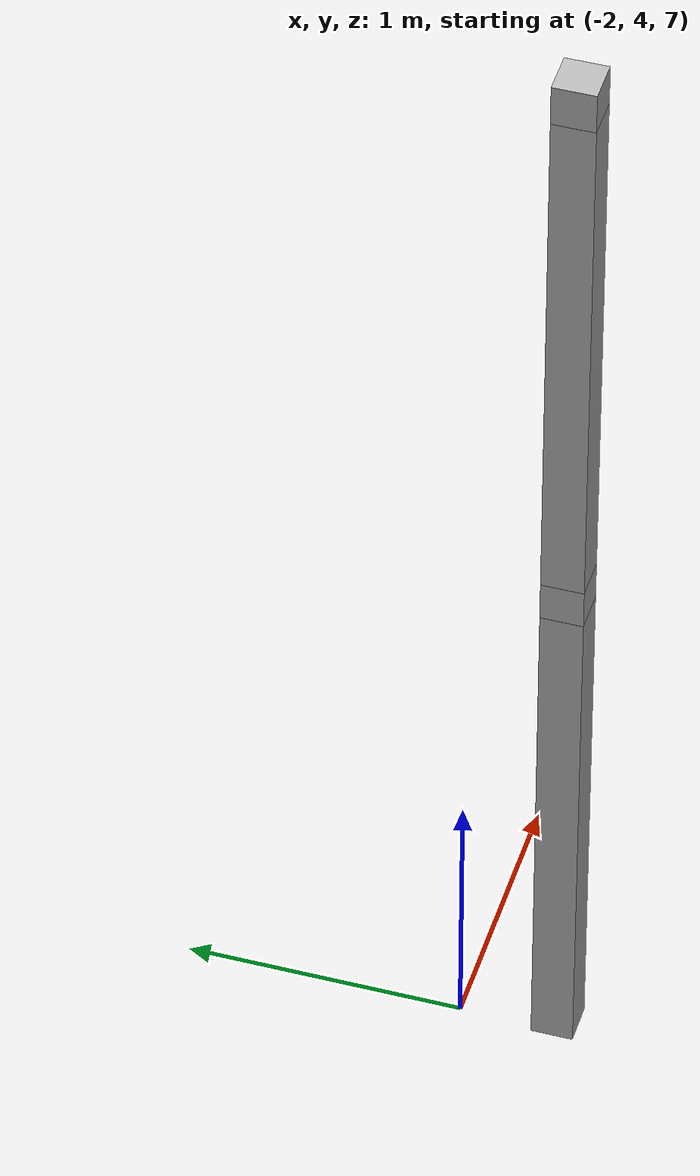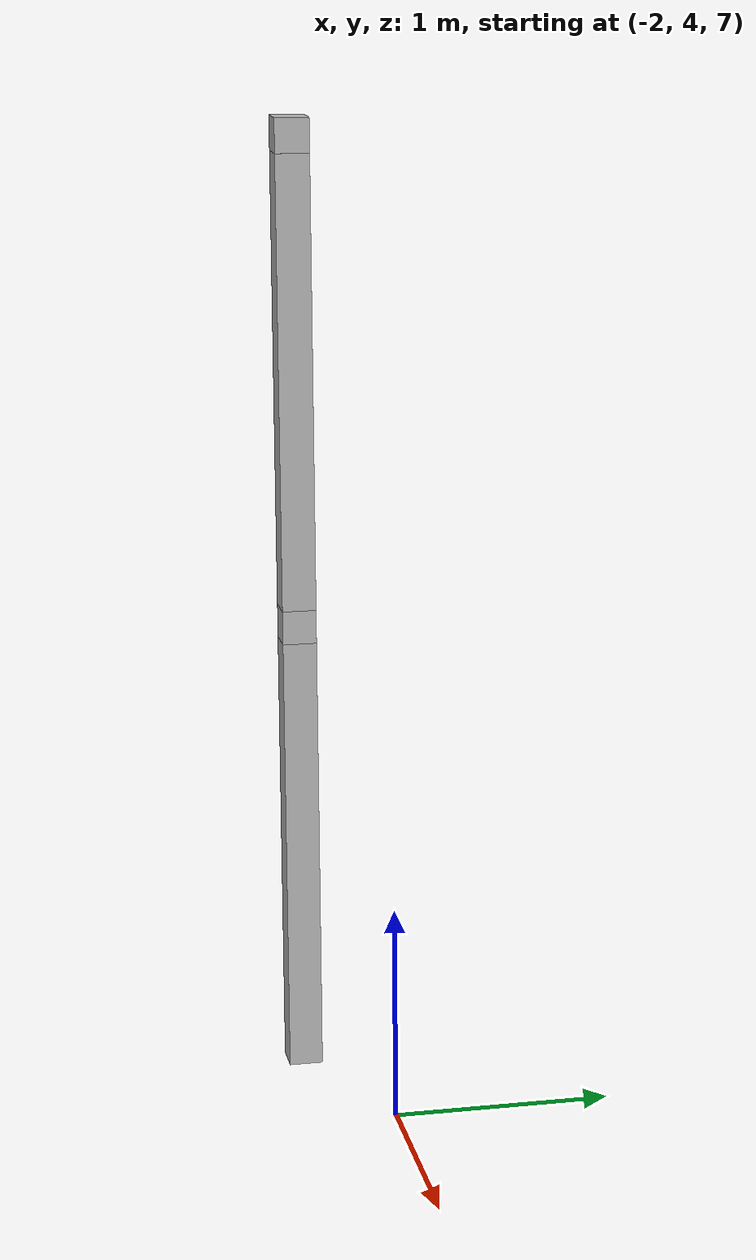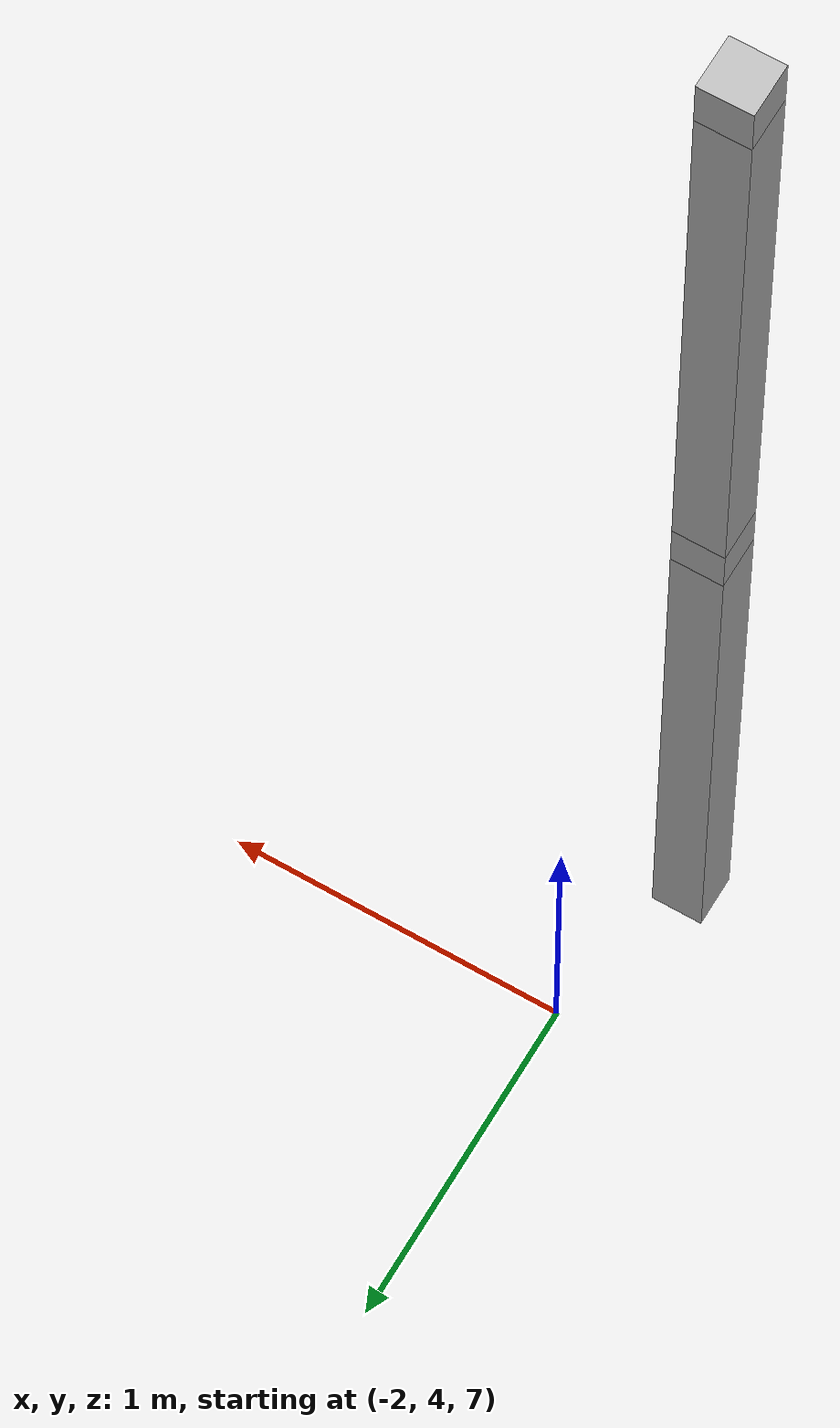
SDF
<sdf version="1.7">
 <world name="default">
  <model name="orthogonal_747_2.000.15_TS">
   <static>1</static>
   <link name="u_link_5_4_2">
    <inertial>
     <mass>1</mass>
     <inertia>
      <ixx>0.166667</ixx>
      <ixy>0</ixy>
      <ixz>0</ixz>
      <iyy>0.166667</iyy>
      <iyz>0</iyz>
      <izz>0.166667</izz>
     </inertia>
    </inertial>
    <pose>4.3 8.6 11.825 0 -0 0</pose>
    <visual name="visual_0">
     <laser_retro>5153</laser_retro>
     <geometry><box><size>0.15 1e-06 0.15</size></box></geometry>
     <material>
      <script><name>Gazebo/Grey</name><uri>file://media/materials/scripts/gazebo.material</uri></script>
      <shader type="pixel"><normal_map>__default__</normal_map></shader>
      <ambient>0.678 0.498 0.659 1</ambient>
      <diffuse>0.7 0.7 0.7 1</diffuse>
      <specular>0.01 0.01 0.01 1</specular>
      <emissive>0 0 0 1</emissive>
     </material>
     <pose>0 -0.075 0 0 -0 0</pose>
     <transparency>1</transparency>
    </visual>
    <visual name="visual_1">
     <laser_retro>5154</laser_retro>
     <geometry><box><size>0.15 1e-06 0.15</size></box></geometry>
     <material>
      <script><name>Gazebo/Grey</name><uri>file://media/materials/scripts/gazebo.material</uri></script>
      <shader type="pixel"><normal_map>__default__</normal_map></shader>
      <ambient>0.447 0.624 0.812 1</ambient>
      <diffuse>0.7 0.7 0.7 1</diffuse>
      <specular>0.01 0.01 0.01 1</specular>
      <emissive>0 0 0 1</emissive>
     </material>
     <pose>0 0.075 0 0 -0 0</pose>
     <transparency>1</transparency>
    </visual>
    <visual name="visual_2">
     <laser_retro>5155</laser_retro>
     <geometry><box><size>0.15 0.15 1e-06</size></box></geometry>
     <material>
      <script><name>Gazebo/Grey</name><uri>file://media/materials/scripts/gazebo.material</uri></script>
      <shader type="pixel"><normal_map>__default__</normal_map></shader>
      <ambient>0.988 0.686 0.243 1</ambient>
      <diffuse>0.7 0.7 0.7 1</diffuse>
      <specular>0.01 0.01 0.01 1</specular>
      <emissive>0 0 0 1</emissive>
     </material>
     <pose>0 0 -0.075 0 -0 0</pose>
     <transparency>1</transparency>
    </visual>
    <visual name="visual_3">
     <laser_retro>5156</laser_retro>
     <geometry><box><size>1e-06 0.15 0.15</size></box></geometry>
     <material>
      <script><name>Gazebo/Grey</name><uri>file://media/materials/scripts/gazebo.material</uri></script>
      <shader type="pixel"><normal_map>__default__</normal_map></shader>
      <ambient>0.988 0.914 0.31 1</ambient>
      <diffuse>0.7 0.7 0.7 1</diffuse>
      <specular>0.01 0.01 0.01 1</specular>
      <emissive>0 0 0 1</emissive>
     </material>
     <pose>0.075 0 0 0 -0 0</pose>
     <transparency>1</transparency>
    </visual>
    <visual name="visual_4">
     <laser_retro>5157</laser_retro>
     <geometry><box><size>0.15 0.15 1e-06</size></box></geometry>
     <material>
      <script><name>Gazebo/Grey</name><uri>file://media/materials/scripts/gazebo.material</uri></script>
      <shader type="pixel"><normal_map>__default__</normal_map></shader>
      <ambient>0.937 0.161 0.161 1</ambient>
      <diffuse>0.7 0.7 0.7 1</diffuse>
      <specular>0.01 0.01 0.01 1</specular>
      <emissive>0 0 0 1</emissive>
     </material>
     <pose>0 0 0.075 0 -0 0</pose>
     <transparency>1</transparency>
    </visual>
    <visual name="visual_5">
     <laser_retro>5158</laser_retro>
     <geometry><box><size>1e-06 0.15 0.15</size></box></geometry>
     <material>
      <script><name>Gazebo/Grey</name><uri>file://media/materials/scripts/gazebo.material</uri></script>
      <shader type="pixel"><normal_map>__default__</normal_map></shader>
      <ambient>0.541 0.886 0.204 1</ambient>
      <diffuse>0.7 0.7 0.7 1</diffuse>
      <specular>0.01 0.01 0.01 1</specular>
      <emissive>0 0 0 1</emissive>
     </material>
     <pose>-0.075 0 0 0 -0 0</pose>
     <transparency>1</transparency>
    </visual>
    <visual name="visual_texture">
     <geometry><box><size>0.149985 0.149985 0.149985</size></box></geometry>
     <material>
      <script>
       <uri>model://BASE_MODELS/simple_block_v2_textured/materials/scripts</uri>
       <uri>model://BASE_MODELS/simple_block_v2_textured/materials/textures</uri>
       <name>metal</name>
      </script>
     </material>
     <laser_retro>5159</laser_retro>
    </visual>
    <collision name="collision">
     <geometry><box><size>0.15 0.15 0.15</size></box></geometry>
     <surface>
      <friction>
       <ode><mu>1</mu><mu2>1</mu2><fdir1>0 0 0</fdir1><slip1>0</slip1><slip2>0</slip2></ode>
       <torsional>
        <coefficient>1</coefficient>
        <patch_radius>0</patch_radius>
        <surface_radius>0</surface_radius>
        <use_patch_radius>1</use_patch_radius>
        <ode><slip>0</slip></ode>
       </torsional>
      </friction>
      <bounce><restitution_coefficient>0</restitution_coefficient><threshold>1e+06</threshold></bounce>
      <contact>
       <collide_without_contact>0</collide_without_contact>
       <collide_without_contact_bitmask>1</collide_without_contact_bitmask>
       <collide_bitmask>1</collide_bitmask>
       <ode>
        <soft_cfm>0</soft_cfm>
        <soft_erp>0.2</soft_erp>
        <kp>1e+13</kp>
        <kd>1</kd>
        <max_vel>0.01</max_vel>
        <min_depth>0</min_depth>
       </ode>
       <bullet>
        <split_impulse>1</split_impulse>
        <split_impulse_penetration_threshold>-0.01</split_impulse_penetration_threshold>
        <soft_cfm>0</soft_cfm>
        <soft_erp>0.2</soft_erp>
        <kp>1e+13</kp>
        <kd>1</kd>
       </bullet>
      </contact>
     </surface>
    </collision>
   </link>
   <link name="z_link_5_4_2">
    <inertial>
     <mass>1</mass>
     <inertia>
      <ixx>0.166667</ixx>
      <ixy>0</ixy>
      <ixz>0</ixz>
      <iyy>0.166667</iyy>
      <iyz>0</iyz>
      <izz>0.166667</izz>
     </inertia>
    </inertial>
    <pose>4.3 8.6 10.75 0 -0 0</pose>
    <visual name="visual_0">
     <laser_retro>5160</laser_retro>
     <geometry><box><size>0.15 1e-06 2</size></box></geometry>
     <material>
      <script><name>Gazebo/Grey</name><uri>file://media/materials/scripts/gazebo.material</uri></script>
      <shader type="pixel"><normal_map>__default__</normal_map></shader>
      <ambient>0.678 0.498 0.659 1</ambient>
      <diffuse>0.7 0.7 0.7 1</diffuse>
      <specular>0.01 0.01 0.01 1</specular>
      <emissive>0 0 0 1</emissive>
     </material>
     <pose>0 -0.075 0 0 -0 0</pose>
     <transparency>1</transparency>
    </visual>
    <visual name="visual_1">
     <laser_retro>5161</laser_retro>
     <geometry><box><size>0.15 1e-06 2</size></box></geometry>
     <material>
      <script><name>Gazebo/Grey</name><uri>file://media/materials/scripts/gazebo.material</uri></script>
      <shader type="pixel"><normal_map>__default__</normal_map></shader>
      <ambient>0.447 0.624 0.812 1</ambient>
      <diffuse>0.7 0.7 0.7 1</diffuse>
      <specular>0.01 0.01 0.01 1</specular>
      <emissive>0 0 0 1</emissive>
     </material>
     <pose>0 0.075 0 0 -0 0</pose>
     <transparency>1</transparency>
    </visual>
    <visual name="visual_2">
     <laser_retro>5162</laser_retro>
     <geometry><box><size>0.15 0.15 1e-06</size></box></geometry>
     <material>
      <script><name>Gazebo/Grey</name><uri>file://media/materials/scripts/gazebo.material</uri></script>
      <shader type="pixel"><normal_map>__default__</normal_map></shader>
      <ambient>0.988 0.686 0.243 1</ambient>
      <diffuse>0.7 0.7 0.7 1</diffuse>
      <specular>0.01 0.01 0.01 1</specular>
      <emissive>0 0 0 1</emissive>
     </material>
     <pose>0 0 -1 0 -0 0</pose>
     <transparency>1</transparency>
    </visual>
    <visual name="visual_3">
     <laser_retro>5163</laser_retro>
     <geometry><box><size>1e-06 0.15 2</size></box></geometry>
     <material>
      <script><name>Gazebo/Grey</name><uri>file://media/materials/scripts/gazebo.material</uri></script>
      <shader type="pixel"><normal_map>__default__</normal_map></shader>
      <ambient>0.988 0.914 0.31 1</ambient>
      <diffuse>0.7 0.7 0.7 1</diffuse>
      <specular>0.01 0.01 0.01 1</specular>
      <emissive>0 0 0 1</emissive>
     </material>
     <pose>0.075 0 0 0 -0 0</pose>
     <transparency>1</transparency>
    </visual>
    <visual name="visual_4">
     <laser_retro>5164</laser_retro>
     <geometry><box><size>0.15 0.15 1e-06</size></box></geometry>
     <material>
      <script><name>Gazebo/Grey</name><uri>file://media/materials/scripts/gazebo.material</uri></script>
      <shader type="pixel"><normal_map>__default__</normal_map></shader>
      <ambient>0.937 0.161 0.161 1</ambient>
      <diffuse>0.7 0.7 0.7 1</diffuse>
      <specular>0.01 0.01 0.01 1</specular>
      <emissive>0 0 0 1</emissive>
     </material>
     <pose>0 0 1 0 -0 0</pose>
     <transparency>1</transparency>
    </visual>
    <visual name="visual_5">
     <laser_retro>5165</laser_retro>
     <geometry><box><size>1e-06 0.15 2</size></box></geometry>
     <material>
      <script><name>Gazebo/Grey</name><uri>file://media/materials/scripts/gazebo.material</uri></script>
      <shader type="pixel"><normal_map>__default__</normal_map></shader>
      <ambient>0.541 0.886 0.204 1</ambient>
      <diffuse>0.7 0.7 0.7 1</diffuse>
      <specular>0.01 0.01 0.01 1</specular>
      <emissive>0 0 0 1</emissive>
     </material>
     <pose>-0.075 0 0 0 -0 0</pose>
     <transparency>1</transparency>
    </visual>
    <visual name="visual_texture">
     <geometry><box><size>0.149985 0.149985 1.9998</size></box></geometry>
     <material>
      <script>
       <uri>model://BASE_MODELS/simple_block_v2_textured/materials/scripts</uri>
       <uri>model://BASE_MODELS/simple_block_v2_textured/materials/textures</uri>
       <name>metal</name>
      </script>
     </material>
     <laser_retro>5166</laser_retro>
    </visual>
    <collision name="collision">
     <geometry><box><size>0.15 0.15 2</size></box></geometry>
     <surface>
      <friction>
       <ode><mu>1</mu><mu2>1</mu2><fdir1>0 0 0</fdir1><slip1>0</slip1><slip2>0</slip2></ode>
       <torsional>
        <coefficient>1</coefficient>
        <patch_radius>0</patch_radius>
        <surface_radius>0</surface_radius>
        <use_patch_radius>1</use_patch_radius>
        <ode><slip>0</slip></ode>
       </torsional>
      </friction>
      <bounce><restitution_coefficient>0</restitution_coefficient><threshold>1e+06</threshold></bounce>
      <contact>
       <collide_without_contact>0</collide_without_contact>
       <collide_without_contact_bitmask>1</collide_without_contact_bitmask>
       <collide_bitmask>1</collide_bitmask>
       <ode>
        <soft_cfm>0</soft_cfm>
        <soft_erp>0.2</soft_erp>
        <kp>1e+13</kp>
        <kd>1</kd>
        <max_vel>0.01</max_vel>
        <min_depth>0</min_depth>
       </ode>
       <bullet>
        <split_impulse>1</split_impulse>
        <split_impulse_penetration_threshold>-0.01</split_impulse_penetration_threshold>
        <soft_cfm>0</soft_cfm>
        <soft_erp>0.2</soft_erp>
        <kp>1e+13</kp>
        <kd>1</kd>
       </bullet>
      </contact>
     </surface>
    </collision>
   </link>
   <link name="u_link_6_4_2">
    <inertial>
     <mass>1</mass>
     <inertia>
      <ixx>0.166667</ixx>
      <ixy>0</ixy>
      <ixz>0</ixz>
      <iyy>0.166667</iyy>
      <iyz>0</iyz>
      <izz>0.166667</izz>
     </inertia>
    </inertial>
    <pose>4.3 8.6 13.975 0 -0 0</pose>
    <visual name="visual_0">
     <laser_retro>6182</laser_retro>
     <geometry><box><size>0.15 1e-06 0.15</size></box></geometry>
     <material>
      <script><name>Gazebo/Grey</name><uri>file://media/materials/scripts/gazebo.material</uri></script>
      <shader type="pixel"><normal_map>__default__</normal_map></shader>
      <ambient>0.678 0.498 0.659 1</ambient>
      <diffuse>0.7 0.7 0.7 1</diffuse>
      <specular>0.01 0.01 0.01 1</specular>
      <emissive>0 0 0 1</emissive>
     </material>
     <pose>0 -0.075 0 0 -0 0</pose>
     <transparency>1</transparency>
    </visual>
    <visual name="visual_1">
     <laser_retro>6183</laser_retro>
     <geometry><box><size>0.15 1e-06 0.15</size></box></geometry>
     <material>
      <script><name>Gazebo/Grey</name><uri>file://media/materials/scripts/gazebo.material</uri></script>
      <shader type="pixel"><normal_map>__default__</normal_map></shader>
      <ambient>0.447 0.624 0.812 1</ambient>
      <diffuse>0.7 0.7 0.7 1</diffuse>
      <specular>0.01 0.01 0.01 1</specular>
      <emissive>0 0 0 1</emissive>
     </material>
     <pose>0 0.075 0 0 -0 0</pose>
     <transparency>1</transparency>
    </visual>
    <visual name="visual_2">
     <laser_retro>6184</laser_retro>
     <geometry><box><size>0.15 0.15 1e-06</size></box></geometry>
     <material>
      <script><name>Gazebo/Grey</name><uri>file://media/materials/scripts/gazebo.material</uri></script>
      <shader type="pixel"><normal_map>__default__</normal_map></shader>
      <ambient>0.988 0.686 0.243 1</ambient>
      <diffuse>0.7 0.7 0.7 1</diffuse>
      <specular>0.01 0.01 0.01 1</specular>
      <emissive>0 0 0 1</emissive>
     </material>
     <pose>0 0 -0.075 0 -0 0</pose>
     <transparency>1</transparency>
    </visual>
    <visual name="visual_3">
     <laser_retro>6185</laser_retro>
     <geometry><box><size>1e-06 0.15 0.15</size></box></geometry>
     <material>
      <script><name>Gazebo/Grey</name><uri>file://media/materials/scripts/gazebo.material</uri></script>
      <shader type="pixel"><normal_map>__default__</normal_map></shader>
      <ambient>0.988 0.914 0.31 1</ambient>
      <diffuse>0.7 0.7 0.7 1</diffuse>
      <specular>0.01 0.01 0.01 1</specular>
      <emissive>0 0 0 1</emissive>
     </material>
     <pose>0.075 0 0 0 -0 0</pose>
     <transparency>1</transparency>
    </visual>
    <visual name="visual_4">
     <laser_retro>6186</laser_retro>
     <geometry><box><size>0.15 0.15 1e-06</size></box></geometry>
     <material>
      <script><name>Gazebo/Grey</name><uri>file://media/materials/scripts/gazebo.material</uri></script>
      <shader type="pixel"><normal_map>__default__</normal_map></shader>
      <ambient>0.937 0.161 0.161 1</ambient>
      <diffuse>0.7 0.7 0.7 1</diffuse>
      <specular>0.01 0.01 0.01 1</specular>
      <emissive>0 0 0 1</emissive>
     </material>
     <pose>0 0 0.075 0 -0 0</pose>
     <transparency>1</transparency>
    </visual>
    <visual name="visual_5">
     <laser_retro>6187</laser_retro>
     <geometry><box><size>1e-06 0.15 0.15</size></box></geometry>
     <material>
      <script><name>Gazebo/Grey</name><uri>file://media/materials/scripts/gazebo.material</uri></script>
      <shader type="pixel"><normal_map>__default__</normal_map></shader>
      <ambient>0.541 0.886 0.204 1</ambient>
      <diffuse>0.7 0.7 0.7 1</diffuse>
      <specular>0.01 0.01 0.01 1</specular>
      <emissive>0 0 0 1</emissive>
     </material>
     <pose>-0.075 0 0 0 -0 0</pose>
     <transparency>1</transparency>
    </visual>
    <visual name="visual_texture">
     <geometry><box><size>0.149985 0.149985 0.149985</size></box></geometry>
     <material>
      <script>
       <uri>model://BASE_MODELS/simple_block_v2_textured/materials/scripts</uri>
       <uri>model://BASE_MODELS/simple_block_v2_textured/materials/textures</uri>
       <name>metal</name>
      </script>
     </material>
     <laser_retro>6188</laser_retro>
    </visual>
    <collision name="collision">
     <geometry><box><size>0.15 0.15 0.15</size></box></geometry>
     <surface>
      <friction>
       <ode><mu>1</mu><mu2>1</mu2><fdir1>0 0 0</fdir1><slip1>0</slip1><slip2>0</slip2></ode>
       <torsional>
        <coefficient>1</coefficient>
        <patch_radius>0</patch_radius>
        <surface_radius>0</surface_radius>
        <use_patch_radius>1</use_patch_radius>
        <ode><slip>0</slip></ode>
       </torsional>
      </friction>
      <bounce><restitution_coefficient>0</restitution_coefficient><threshold>1e+06</threshold></bounce>
      <contact>
       <collide_without_contact>0</collide_without_contact>
       <collide_without_contact_bitmask>1</collide_without_contact_bitmask>
       <collide_bitmask>1</collide_bitmask>
       <ode>
        <soft_cfm>0</soft_cfm>
        <soft_erp>0.2</soft_erp>
        <kp>1e+13</kp>
        <kd>1</kd>
        <max_vel>0.01</max_vel>
        <min_depth>0</min_depth>
       </ode>
       <bullet>
        <split_impulse>1</split_impulse>
        <split_impulse_penetration_threshold>-0.01</split_impulse_penetration_threshold>
        <soft_cfm>0</soft_cfm>
        <soft_erp>0.2</soft_erp>
        <kp>1e+13</kp>
        <kd>1</kd>
       </bullet>
      </contact>
     </surface>
    </collision>
   </link>
   <link name="z_link_6_4_2">
    <inertial>
     <mass>1</mass>
     <inertia>
      <ixx>0.166667</ixx>
      <ixy>0</ixy>
      <ixz>0</ixz>
      <iyy>0.166667</iyy>
      <iyz>0</iyz>
      <izz>0.166667</izz>
     </inertia>
    </inertial>
    <pose>4.3 8.6 12.9 0 -0 0</pose>
    <visual name="visual_0">
     <laser_retro>6189</laser_retro>
     <geometry><box><size>0.15 1e-06 2</size></box></geometry>
     <material>
      <script><name>Gazebo/Grey</name><uri>file://media/materials/scripts/gazebo.material</uri></script>
      <shader type="pixel"><normal_map>__default__</normal_map></shader>
      <ambient>0.678 0.498 0.659 1</ambient>
      <diffuse>0.7 0.7 0.7 1</diffuse>
      <specular>0.01 0.01 0.01 1</specular>
      <emissive>0 0 0 1</emissive>
     </material>
     <pose>0 -0.075 0 0 -0 0</pose>
     <transparency>1</transparency>
    </visual>
    <visual name="visual_1">
     <laser_retro>6190</laser_retro>
     <geometry><box><size>0.15 1e-06 2</size></box></geometry>
     <material>
      <script><name>Gazebo/Grey</name><uri>file://media/materials/scripts/gazebo.material</uri></script>
      <shader type="pixel"><normal_map>__default__</normal_map></shader>
      <ambient>0.447 0.624 0.812 1</ambient>
      <diffuse>0.7 0.7 0.7 1</diffuse>
      <specular>0.01 0.01 0.01 1</specular>
      <emissive>0 0 0 1</emissive>
     </material>
     <pose>0 0.075 0 0 -0 0</pose>
     <transparency>1</transparency>
    </visual>
    <visual name="visual_2">
     <laser_retro>6191</laser_retro>
     <geometry><box><size>0.15 0.15 1e-06</size></box></geometry>
     <material>
      <script><name>Gazebo/Grey</name><uri>file://media/materials/scripts/gazebo.material</uri></script>
      <shader type="pixel"><normal_map>__default__</normal_map></shader>
      <ambient>0.988 0.686 0.243 1</ambient>
      <diffuse>0.7 0.7 0.7 1</diffuse>
      <specular>0.01 0.01 0.01 1</specular>
      <emissive>0 0 0 1</emissive>
     </material>
     <pose>0 0 -1 0 -0 0</pose>
     <transparency>1</transparency>
    </visual>
    <visual name="visual_3">
     <laser_retro>6192</laser_retro>
     <geometry><box><size>1e-06 0.15 2</size></box></geometry>
     <material>
      <script><name>Gazebo/Grey</name><uri>file://media/materials/scripts/gazebo.material</uri></script>
      <shader type="pixel"><normal_map>__default__</normal_map></shader>
      <ambient>0.988 0.914 0.31 1</ambient>
      <diffuse>0.7 0.7 0.7 1</diffuse>
      <specular>0.01 0.01 0.01 1</specular>
      <emissive>0 0 0 1</emissive>
     </material>
     <pose>0.075 0 0 0 -0 0</pose>
     <transparency>1</transparency>
    </visual>
    <visual name="visual_4">
     <laser_retro>6193</laser_retro>
     <geometry><box><size>0.15 0.15 1e-06</size></box></geometry>
     <material>
      <script><name>Gazebo/Grey</name><uri>file://media/materials/scripts/gazebo.material</uri></script>
      <shader type="pixel"><normal_map>__default__</normal_map></shader>
      <ambient>0.937 0.161 0.161 1</ambient>
      <diffuse>0.7 0.7 0.7 1</diffuse>
      <specular>0.01 0.01 0.01 1</specular>
      <emissive>0 0 0 1</emissive>
     </material>
     <pose>0 0 1 0 -0 0</pose>
     <transparency>1</transparency>
    </visual>
    <visual name="visual_5">
     <laser_retro>6194</laser_retro>
     <geometry><box><size>1e-06 0.15 2</size></box></geometry>
     <material>
      <script><name>Gazebo/Grey</name><uri>file://media/materials/scripts/gazebo.material</uri></script>
      <shader type="pixel"><normal_map>__default__</normal_map></shader>
      <ambient>0.541 0.886 0.204 1</ambient>
      <diffuse>0.7 0.7 0.7 1</diffuse>
      <specular>0.01 0.01 0.01 1</specular>
      <emissive>0 0 0 1</emissive>
     </material>
     <pose>-0.075 0 0 0 -0 0</pose>
     <transparency>1</transparency>
    </visual>
    <visual name="visual_texture">
     <geometry><box><size>0.149985 0.149985 1.9998</size></box></geometry>
     <material>
      <script>
       <uri>model://BASE_MODELS/simple_block_v2_textured/materials/scripts</uri>
       <uri>model://BASE_MODELS/simple_block_v2_textured/materials/textures</uri>
       <name>metal</name>
      </script>
     </material>
     <laser_retro>6195</laser_retro>
    </visual>
    <collision name="collision">
     <geometry><box><size>0.15 0.15 2</size></box></geometry>
     <surface>
      <friction>
       <ode><mu>1</mu><mu2>1</mu2><fdir1>0 0 0</fdir1><slip1>0</slip1><slip2>0</slip2></ode>
       <torsional>
        <coefficient>1</coefficient>
        <patch_radius>0</patch_radius>
        <surface_radius>0</surface_radius>
        <use_patch_radius>1</use_patch_radius>
        <ode><slip>0</slip></ode>
       </torsional>
      </friction>
      <bounce><restitution_coefficient>0</restitution_coefficient><threshold>1e+06</threshold></bounce>
      <contact>
       <collide_without_contact>0</collide_without_contact>
       <collide_without_contact_bitmask>1</collide_without_contact_bitmask>
       <collide_bitmask>1</collide_bitmask>
       <ode>
        <soft_cfm>0</soft_cfm>
        <soft_erp>0.2</soft_erp>
        <kp>1e+13</kp>
        <kd>1</kd>
        <max_vel>0.01</max_vel>
        <min_depth>0</min_depth>
       </ode>
       <bullet>
        <split_impulse>1</split_impulse>
        <split_impulse_penetration_threshold>-0.01</split_impulse_penetration_threshold>
        <soft_cfm>0</soft_cfm>
        <soft_erp>0.2</soft_erp>
        <kp>1e+13</kp>
        <kd>1</kd>
       </bullet>
      </contact>
     </surface>
    </collision>
   </link>
   <pose>-6.47624 -5 -2.5 0 -0 0</pose>
  </model>
 </world>
</sdf>
